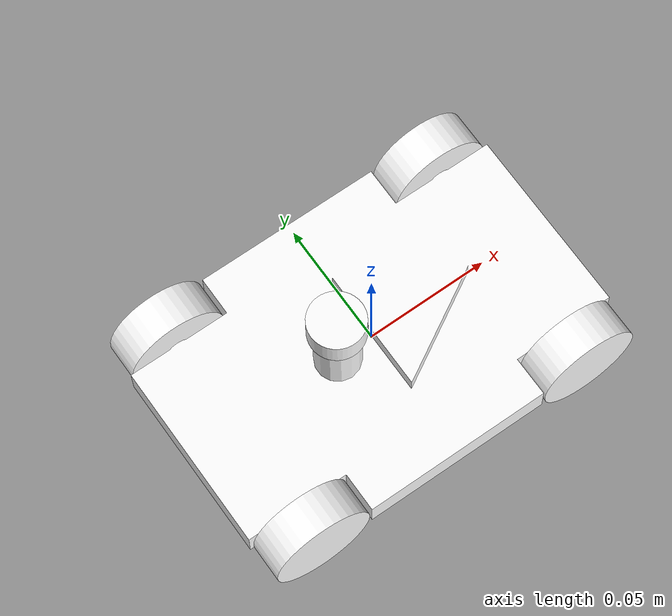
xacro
<robot
  name="car" xmlns:xacro="http://www.ros.org/wiki/xacro">

  <xacro:include filename="$(find car)/robots/xacro/car.gazebo" />

  <link name="base_footprint">
      <visual>
          <geometry>
                  <box size="0.001 0.001 0.001"/>
              </geometry>
          <origin rpy="0 0 0" xyz="0 0 0"/>
      </visual>
  </link>
  <joint name="base_footprint_joint" type="fixed">
      <origin xyz="0 0 0" />
      <parent link="base_footprint" />
      <child link="base_link" />
  </joint>

  <link
    name="base_link">
    <inertial>
      <origin
        xyz="-5.98645397950426E-05 0 -0.00480775540649346"
        rpy="0 0 0" />
      <mass
        value="0.190196938994804" />
      <inertia
        ixx="0.000140392533271429"
        ixy="3.71363647578478E-20"
        ixz="1.43209463748562E-06"
        iyy="0.000336958997743863"
        iyz="-7.440349237934E-21"
        izz="0.000464519694978226" />
    </inertial>
    <visual>
      <origin
        xyz="0 0 0"
        rpy="0 0 0" />
      <geometry>
        <mesh
          filename="package://car/meshes/base_link.STL" />
      </geometry>
      <material
        name="">
        <color
          rgba="1 1 1 1" />
      </material>
    </visual>
    <collision>
      <origin
        xyz="0 0 0"
        rpy="0 0 0" />
      <geometry>
        <mesh
          filename="package://car/meshes/base_link.STL" />
      </geometry>
    </collision>
  </link>
  <link
    name="f_Rwheel">
    <inertial>
      <origin
        xyz="-6.93889390390723E-18 -0.00749999999999998 0"
        rpy="0 0 0" />
      <mass
        value="0.0188495559215388" />
      <inertia
        ixx="2.23838476568273E-06"
        ixy="1.14794370197489E-38"
        ixz="0"
        iyy="3.76991118430776E-06"
        iyz="5.46392484019369E-39"
        izz="2.23838476568273E-06" />
    </inertial>
    <visual>
      <origin
        xyz="0 0 0"
        rpy="0 0 0" />
      <geometry>
        <mesh
          filename="package://car/meshes/f_Rwheel.STL" />
      </geometry>
      <material
        name="">
        <color
          rgba="1 1 1 1" />
      </material>
    </visual>
    <collision>
      <origin
        xyz="0 0 0"
        rpy="0 0 0" />
      <geometry>
        <mesh
          filename="package://car/meshes/f_Rwheel.STL" />
      </geometry>
    </collision>
  </link>
  <joint
    name="f_Rwheel_j"
    type="continuous">
    <origin
      xyz="0.059 -0.039 -0.006"
      rpy="0 0 0" />
    <parent
      link="base_link" />
    <child
      link="f_Rwheel" />
    <axis
      xyz="0 -1 0" />
    <limit
      effort="10"
      velocity="100" />
  </joint>
  <link
    name="f_Lwheel">
    <inertial>
      <origin
        xyz="-6.93889390390723E-18 0.00750000000000001 -4.33680868994202E-19"
        rpy="0 0 0" />
      <mass
        value="0.0188495559215388" />
      <inertia
        ixx="2.23838476568273E-06"
        ixy="5.29395592033939E-23"
        ixz="7.00960440898279E-54"
        iyy="3.76991118430775E-06"
        iyz="5.46392484019368E-39"
        izz="2.23838476568273E-06" />
    </inertial>
    <visual>
      <origin
        xyz="0 0 0"
        rpy="0 0 0" />
      <geometry>
        <mesh
          filename="package://car/meshes/f_Lwheel.STL" />
      </geometry>
      <material
        name="">
        <color
          rgba="1 1 1 1" />
      </material>
    </visual>
    <collision>
      <origin
        xyz="0 0 0"
        rpy="0 0 0" />
      <geometry>
        <mesh
          filename="package://car/meshes/f_Lwheel.STL" />
      </geometry>
    </collision>
  </link>
  <joint
    name="f_Lwheel_j"
    type="continuous">
    <origin
      xyz="0.059 0.039 -0.006"
      rpy="0 0 0" />
    <parent
      link="base_link" />
    <child
      link="f_Lwheel" />
    <axis
      xyz="0 -1 0" />
    <limit
      effort="10"
      velocity="100" />
  </joint>
  <link
    name="r_Rwheel">
    <inertial>
      <origin
        xyz="0 -0.00749999999999998 0"
        rpy="0 0 0" />
      <mass
        value="0.0188495559215388" />
      <inertia
        ixx="2.23838476568273E-06"
        ixy="1.14794370197489E-38"
        ixz="0"
        iyy="3.76991118430776E-06"
        iyz="5.46392484019369E-39"
        izz="2.23838476568273E-06" />
    </inertial>
    <visual>
      <origin
        xyz="0 0 0"
        rpy="0 0 0" />
      <geometry>
        <mesh
          filename="package://car/meshes/b_Rwheel.STL" />
      </geometry>
      <material
        name="">
        <color
          rgba="1 1 1 1" />
      </material>
    </visual>
    <collision>
      <origin
        xyz="0 0 0"
        rpy="0 0 0" />
      <geometry>
        <mesh
          filename="package://car/meshes/b_Rwheel.STL" />
      </geometry>
    </collision>
  </link>
  <joint
    name="r_Rwheel_j"
    type="continuous">
    <origin
      xyz="-0.059 -0.039 -0.006"
      rpy="0 0 0" />
    <parent
      link="base_link" />
    <child
      link="r_Rwheel" />
    <axis
      xyz="0 -1 0" />
    <limit
      effort="10"
      velocity="100" />
  </joint>
  <link
    name="r_Lwheel">
    <inertial>
      <origin
        xyz="0 0.00750000000000001 -4.33680868994202E-19"
        rpy="0 0 0" />
      <mass
        value="0.0188495559215388" />
      <inertia
        ixx="2.23838476568273E-06"
        ixy="5.29395592033939E-23"
        ixz="7.00960440898279E-54"
        iyy="3.76991118430775E-06"
        iyz="5.46392484019368E-39"
        izz="2.23838476568273E-06" />
    </inertial>
    <visual>
      <origin
        xyz="0 0 0"
        rpy="0 0 0" />
      <geometry>
        <mesh
          filename="package://car/meshes/b_Lwheel.STL" />
      </geometry>
      <material
        name="">
        <color
          rgba="1 1 1 1" />
      </material>
    </visual>
    <collision>
      <origin
        xyz="0 0 0"
        rpy="0 0 0" />
      <geometry>
        <mesh
          filename="package://car/meshes/b_Lwheel.STL" />
      </geometry>
    </collision>
  </link>
  <joint
    name="r_Lwheel_j"
    type="continuous">
    <origin
      xyz="-0.059 0.039 -0.006"
      rpy="0 0 0" />
    <parent
      link="base_link" />
    <child
      link="r_Lwheel" />
    <axis
      xyz="0 -1 0" />
    <limit
      effort="10"
      velocity="100" />
  </joint>
  <link
    name="lidar">
    <inertial>
      <origin
        xyz="0 0 0.00339338235294118"
        rpy="0 0 0" />
      <mass
        value="0.00341805280710569" />
      <inertia
        ixx="1.37678095848722E-07"
        ixy="2.43294497667159E-23"
        ixz="-2.11525481719696E-24"
        iyy="1.37678095848722E-07"
        iyz="-9.37213591384351E-24"
        izz="2.22060335126341E-07" />
    </inertial>
    <visual>
      <origin
        xyz="0 0 0"
        rpy="0 0 0" />
      <geometry>
        <mesh
          filename="package://car/meshes/lidar.STL" />
      </geometry>
      <material
        name="">
        <color
          rgba="1 1 1 1" />
      </material>
    </visual>
    <collision>
      <origin
        xyz="0 0 0"
        rpy="0 0 0" />
      <geometry>
        <mesh
          filename="package://car/meshes/lidar.STL" />
      </geometry>
    </collision>
  </link>
  <joint
    name="lidar_joint"
    type="fixed">
    <origin
      xyz="-0.015 0 0.03"
      rpy="0 0 0" />
    <parent
      link="base_link" />
    <child
      link="lidar" />
    <axis
      xyz="0 0 1" />
    <limit
      effort="10"
      velocity="100" />
  </joint>

</robot>
